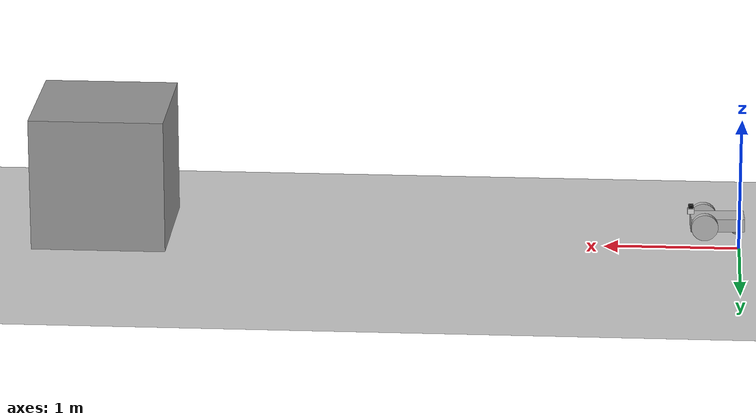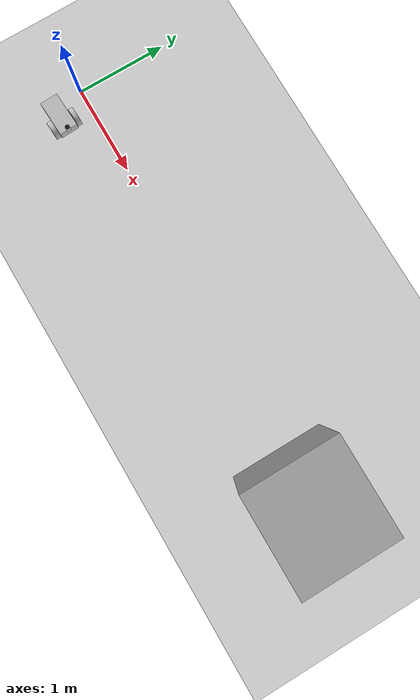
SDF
<sdf version="1.7">
 <world name="default">
  <light name="sun" type="directional">
   <pose>0 0 10 0 -0 0</pose>
   <diffuse>0.8 0.8 0.8 1</diffuse>
   <specular>0.2 0.2 0.2 1</specular>
   <attenuation>
    <range>1000</range>
    <constant>0.9</constant>
    <linear>0.01</linear>
    <quadratic>0.001</quadratic>
   </attenuation>
   <direction>-0.5 0.1 -0.9</direction>
   <spot><inner_angle>0</inner_angle><outer_angle>0</outer_angle><falloff>0</falloff></spot>
  </light>
  <model name="ground_plane">
   <static>1</static>
   <link name="link">
    <collision name="collision">
     <geometry><plane><normal>0 0 1</normal><size>100 100</size></plane></geometry>
     <surface>
      <contact><collide_bitmask>65535</collide_bitmask></contact>
      <friction><ode><mu>100</mu><mu2>50</mu2></ode></friction>
     </surface>
    </collision>
    <visual name="visual">
     <cast_shadows>0</cast_shadows>
     <geometry><plane><normal>0 0 1</normal><size>100 100</size></plane></geometry>
     <material>
      <script><uri>file://media/materials/scripts/gazebo.material</uri><name>Gazebo/Grey</name></script>
     </material>
    </visual>
   </link>
  </model>
  <gravity>0 0 -9.8</gravity>
  <magnetic_field>6e-06 2.3e-05 -4.2e-05</magnetic_field>
  <atmosphere type="adiabatic"/>
  <physics type="ode">
   <max_step_size>0.001</max_step_size>
   <real_time_factor>1</real_time_factor>
   <real_time_update_rate>1000</real_time_update_rate>
  </physics>
  <scene><ambient>0.4 0.4 0.4 1</ambient><background>0.7 0.7 0.7 1</background><shadows>1</shadows></scene>
  <audio><device>default</device></audio>
  <spherical_coordinates>
   <surface_model>EARTH_WGS84</surface_model>
   <latitude_deg>0</latitude_deg>
   <longitude_deg>0</longitude_deg>
   <elevation>0</elevation>
   <heading_deg>0</heading_deg>
  </spherical_coordinates>
  <model name="my_robot">
   <static>0</static>
   <link name="chassis">
    <pose>0 0 0.1 0 -0 0</pose>
    <collision name="collision"><geometry><box><size>0.4 0.2 0.1</size></box></geometry></collision>
    <visual name="visual"><geometry><box><size>0.4 0.2 0.1</size></box></geometry></visual>
    <collision name="caster_collision">
     <pose>-0.15 0 -0.05 0 -0 0</pose>
     <geometry><sphere><radius>0.05</radius></sphere></geometry>
     <surface><friction><ode><mu>0</mu><mu2>0</mu2><slip1>1</slip1><slip2>1</slip2></ode></friction></surface>
    </collision>
    <visual name="caster_visual">
     <pose>-0.15 0 -0.05 0 -0 0</pose>
     <geometry><sphere><radius>0.05</radius></sphere></geometry>
    </visual>
    <inertial>
     <inertia><ixx>1</ixx><ixy>0</ixy><ixz>0</ixz><iyy>1</iyy><iyz>0</iyz><izz>1</izz></inertia>
     <mass>1</mass>
    </inertial>
   </link>
   <link name="left_wheel">
    <pose>0.1 0.13 0.1 -0 1.5707 1.5707</pose>
    <collision name="collision">
     <geometry><cylinder><radius>0.1</radius><length>0.05</length></cylinder></geometry>
    </collision>
    <visual name="visual">
     <geometry><cylinder><radius>0.1</radius><length>0.05</length></cylinder></geometry>
    </visual>
    <inertial>
     <inertia><ixx>1</ixx><ixy>0</ixy><ixz>0</ixz><iyy>1</iyy><iyz>0</iyz><izz>1</izz></inertia>
     <mass>1</mass>
    </inertial>
   </link>
   <link name="right_wheel">
    <pose>0.1 -0.13 0.1 -0 1.5707 1.5707</pose>
    <collision name="collision">
     <geometry><cylinder><radius>0.1</radius><length>0.05</length></cylinder></geometry>
    </collision>
    <visual name="visual">
     <geometry><cylinder><radius>0.1</radius><length>0.05</length></cylinder></geometry>
    </visual>
    <inertial>
     <inertia><ixx>1</ixx><ixy>0</ixy><ixz>0</ixz><iyy>1</iyy><iyz>0</iyz><izz>1</izz></inertia>
     <mass>1</mass>
    </inertial>
   </link>
   <joint name="left_wheel_hinge" type="revolute">
    <pose>0 0 -0.03 0 -0 0</pose>
    <child>left_wheel</child>
    <parent>chassis</parent>
    <axis>
     <xyz expressed_in="__model__">0 1 0</xyz>
     <limit><lower>-1e+16</lower><upper>1e+16</upper></limit>
     <dynamics><spring_reference>0</spring_reference><spring_stiffness>0</spring_stiffness></dynamics>
    </axis>
   </joint>
   <joint name="right_wheel_hinge" type="revolute">
    <pose>0 0 0.03 0 -0 0</pose>
    <child>right_wheel</child>
    <parent>chassis</parent>
    <axis>
     <xyz expressed_in="__model__">0 1 0</xyz>
     <limit><lower>-1e+16</lower><upper>1e+16</upper></limit>
     <dynamics><spring_reference>0</spring_reference><spring_stiffness>0</spring_stiffness></dynamics>
    </axis>
   </joint>
   <frame name="hokuyo::__model__" attached_to="hokuyo::link">
    <pose relative_to="__model__">0.2 0 0.2 0 -0 0</pose>
   </frame>
   <link name="hokuyo::link">
    <inertial>
     <mass>0.1</mass>
     <inertia><ixx>1</ixx><ixy>0</ixy><ixz>0</ixz><iyy>1</iyy><iyz>0</iyz><izz>1</izz></inertia>
    </inertial>
    <visual name="visual"><geometry><mesh><uri>model://hokuyo/meshes/hokuyo.dae</uri></mesh></geometry></visual>
    <collision name="collision-base">
     <pose>0 0 -0.0145 0 -0 0</pose>
     <geometry><box><size>0.05 0.05 0.041</size></box></geometry>
    </collision>
    <collision name="collision-top">
     <pose>0 0 0.0205 0 -0 0</pose>
     <geometry><cylinder><radius>0.021</radius><length>0.029</length></cylinder></geometry>
    </collision>
    <sensor name="laser" type="ray">
     <pose>0.01 0 0.0175 0 -0 0</pose>
     <ray>
      <scan>
       <horizontal>
        <samples>640</samples>
        <resolution>1</resolution>
        <min_angle>-2.26889</min_angle>
        <max_angle>2.2689</max_angle>
       </horizontal>
       <vertical><samples>1</samples><min_angle>0</min_angle><max_angle>0</max_angle></vertical>
      </scan>
      <range><min>0.08</min><max>10</max><resolution>0.01</resolution></range>
     </ray>
     <plugin name="laser" filename="libRayPlugin.so"/>
     <always_on>1</always_on>
     <update_rate>30</update_rate>
     <visualize>1</visualize>
    </sensor>
    <pose relative_to="hokuyo::__model__">0 0 0 0 -0 0</pose>
   </link>
   <joint name="hokuyo_joint" type="fixed"><child>hokuyo::link</child><parent>chassis</parent></joint>
   <pose>0.161365 -0.32541 6e-06 1.3e-05 4.7e-05 0.047296</pose>
  </model>
  <model name="unit_box">
   <pose>4.74778 -0.168768 0.5 0 -0 0</pose>
   <link name="link">
    <inertial>
     <mass>1</mass>
     <inertia>
      <ixx>0.166667</ixx>
      <ixy>0</ixy>
      <ixz>0</ixz>
      <iyy>0.166667</iyy>
      <iyz>0</iyz>
      <izz>0.166667</izz>
     </inertia>
    </inertial>
    <collision name="collision"><geometry><box><size>1 1 1</size></box></geometry></collision>
    <visual name="visual">
     <geometry><box><size>1 1 1</size></box></geometry>
     <material>
      <script><name>Gazebo/Grey</name><uri>file://media/materials/scripts/gazebo.material</uri></script>
     </material>
    </visual>
   </link>
  </model>
 </world>
</sdf>
